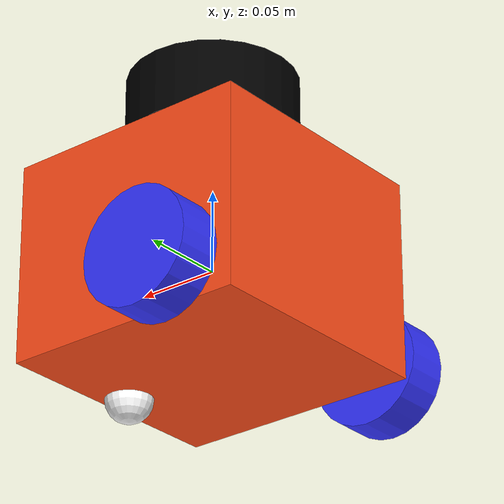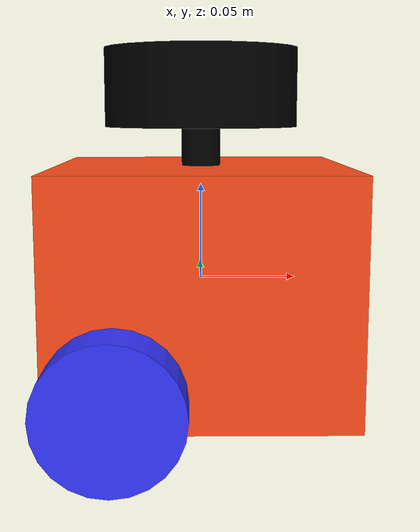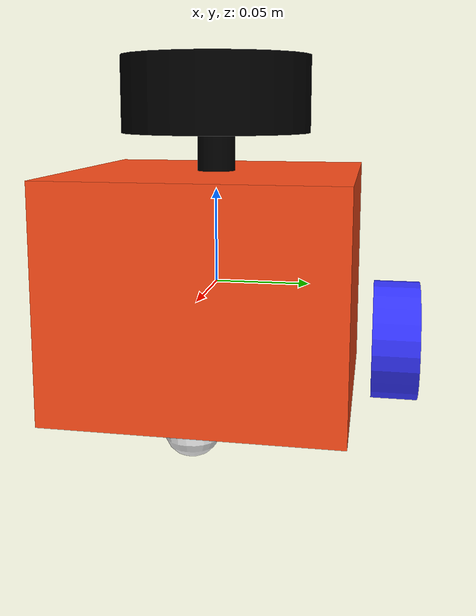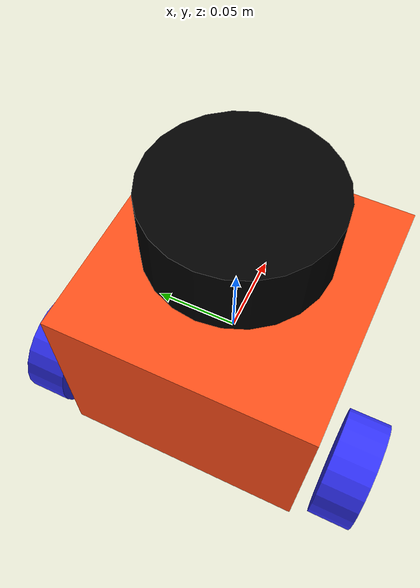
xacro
<?xml version="1.0"?>
<robot xmlns:xacro="http://www.ros.org/wiki/xacro"  name="robot">

    <xacro:include filename="robot_core.xacro" />
    <xacro:include filename="lidar.xacro" />
    <xacro:include filename="ros2_control.xacro" />
</robot>

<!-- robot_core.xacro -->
<robot xmlns:xacro="http://www.ros.org/wiki/xacro" >

    <xacro:include filename="inertial_macros.xacro"/>

    <xacro:property name="chassis_length" value="0.15"/>
    <xacro:property name="chassis_width" value="0.15"/>
    <xacro:property name="chassis_height" value="0.12"/>
    <xacro:property name="chassis_mass" value="1.0"/>

    <xacro:property name="wheel_radius" value="0.034"/>
    <xacro:property name="wheel_thickness" value="0.026"/>
    <xacro:property name="wheel_mass" value="0.05"/>

    <xacro:property name="wheel_offset_x" value="0.04"/>
    <xacro:property name="wheel_offset_y" value="0.0975"/>
    <xacro:property name="wheel_offset_z" value="0.04"/>

    <xacro:property name="caster_wheel_mass" value="0.01"/>
    <xacro:property name="caster_wheel_offset_x" value="0.06"/>

    <material name="white">
        <color rgba="1 1 1 1" />
    </material>

    <material name="orange">
        <color rgba="1 0.3 0.1 1"/>
    </material>

    <material name="blue">
        <color rgba="0.2 0.2 1 1"/>
    </material>

    <material name="black">
        <color rgba="0 0 0 1"/>
    </material>

    <material name="red">
        <color rgba="1 0 0 1"/>
    </material>

    <material name="green">
        <color rgba="0 1 0 1"/>
    </material>

    <material name="brown">
        <color rgba="0.6 0.3 0.1 1"/>
    </material>

    <!-- BASE LINK -->

    <link name="base_link">

    </link>

    <!-- BASE_FOOTPRINT LINK -->

    <joint name="base_footprint_joint" type="fixed">
        <parent link="base_link"/>
        <child link="base_footprint"/>
        <origin xyz="0 0 ${-(wheel_radius+wheel_offset_z)}" rpy="0 0 0"/>
    </joint>

    <link name="base_footprint">
    </link>

    <!-- CHASSIS LINK -->

    <joint name="chassis_joint" type="fixed">
        <parent link="base_link"/>
        <child link="chassis"/>
        <origin xyz="0 0 0"/>
    </joint>

    <link name="chassis">
        <visual>
            <origin xyz="0 0 0"/>
            <geometry>
                <box size="${chassis_length} ${chassis_width} ${chassis_height}"/>
            </geometry>
            <material name="orange"/>
        </visual>
        <collision>
            <origin xyz="0 0 0"/>
            <geometry>
                <box size="${chassis_length} ${chassis_width} ${chassis_height}"/>
            </geometry>
        </collision>
        <xacro:inertial_box mass="${chassis_mass}" x="${chassis_length}" y="${chassis_width}" z="${chassis_height}">
            <origin xyz="0 0 0" rpy="0 0 0"/>
        </xacro:inertial_box>
    </link>

    <gazebo reference="chassis">
        <material>Gazebo/Orange</material>
    </gazebo>

    <!-- LEFT WHEEL LINK -->

    <joint name="left_wheel_joint" type="continuous">
        <parent link="base_link"/>
        <child link="left_wheel"/>
        <origin xyz="${-wheel_offset_x} ${wheel_offset_y} ${-wheel_offset_z}" rpy="0 0 0" />
        <axis xyz="0 1 0"/>
    </joint>

    <link name="left_wheel">
        <visual>
            <origin xyz="0 0 0" rpy="${pi/2} 0 0" />
            <geometry>
                <cylinder radius="${wheel_radius}" length="${wheel_thickness}"/>
            </geometry>
            <material name="blue"/>
        </visual>
        <collision>
            <geometry>
                <sphere radius="${wheel_radius}"/>
            </geometry>
        </collision>
        <xacro:inertial_cylinder mass="${wheel_mass}" length="${wheel_thickness}" radius="${wheel_radius}">
            <origin xyz="0 0 0" rpy="0 0 0"/>
        </xacro:inertial_cylinder>
    </link>

    <gazebo reference="left_wheel">
        <material>Gazebo/Blue</material>
    </gazebo>

    <!-- RIGHT WHEEL LINK -->

    <joint name="right_wheel_joint" type="continuous">
        <parent link="base_link"/>
        <child link="right_wheel"/>
        <origin xyz="${-wheel_offset_x} ${-wheel_offset_y} ${-wheel_offset_z}" rpy="0 0 0" />
        <axis xyz="0 1 0"/>
    </joint>

    <link name="right_wheel">
        <visual>
            <origin xyz="0 0 0" rpy="${pi/2} 0 0" />
            <geometry>
                <cylinder radius="${wheel_radius}" length="${wheel_thickness}"/>
            </geometry>
            <material name="blue"/>
        </visual>
        <collision>
            <geometry>
                <sphere radius="${wheel_radius}"/>
            </geometry>
        </collision>
        <xacro:inertial_cylinder mass="${wheel_mass}" length="${wheel_thickness}" radius="${wheel_radius}">
            <origin xyz="0 0 0" rpy="0 0 0"/>
        </xacro:inertial_cylinder>
    </link>

    <gazebo reference="right_wheel">
        <material>Gazebo/Blue</material>
    </gazebo>

    <!-- front CASTER WHEEL LINK -->

    <joint name="front_caster_wheel_joint" type="fixed">
        <parent link="base_link"/>
        <child link="front_caster_wheel"/>
        <origin xyz="${caster_wheel_offset_x} 0.0 ${-(chassis_height/2)}" rpy="0 0 0"/>
    </joint>

    <link name="front_caster_wheel">
        <visual>
            <geometry>
                <sphere radius="${(wheel_radius+wheel_offset_z-(chassis_height/2))}"/>
            </geometry>
            <material name="white"/>
        </visual>
        <collision>
            <geometry>
                <sphere radius="${(wheel_radius+wheel_offset_z-(chassis_height/2))}"/>
            </geometry>
        </collision>
        <xacro:inertial_sphere mass="${caster_wheel_mass}" radius="${(wheel_radius+wheel_offset_z-(chassis_height/2))}">
            <origin xyz="0 0 0" rpy="0 0 0"/>
        </xacro:inertial_sphere>
    </link>

    <gazebo reference="front_caster_wheel">
        <material>Gazebo/White</material>
        <mu1 value="0.001"/>
        <mu2 value="0.001"/>
    </gazebo>

</robot>

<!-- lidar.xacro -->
<robot xmlns:xacro="http://www.ros.org/wiki/xacro" >

    <joint name="laser_joint" type="fixed">
        <parent link="chassis"/>
        <child link="laser_frame"/>
        <origin xyz="0.0 0 0.1" rpy="0 0 0"/>
    </joint>

    <link name="laser_frame">
        <visual>
            <geometry>
                <cylinder radius="0.05" length="0.04"/>
            </geometry>
            <material name="black"/>
        </visual>
        <visual>
            <origin xyz="0 0 -0.05"/>
            <geometry>
                <cylinder radius="0.01" length="0.1"/>
            </geometry>
            <material name="black"/>
        </visual>
        <collision>
            <geometry>
                <cylinder radius="0.05" length="0.04"/>
            </geometry>
        </collision>
        <xacro:inertial_cylinder mass="0.1" length="0.04" radius="0.05">
            <origin xyz="0 0 0" rpy="0 0 0"/>
        </xacro:inertial_cylinder>
    </link>

    <gazebo reference="laser_frame">
        <material>Gazebo/Black</material>

        <sensor name="laser" type="ray">
            <pose> 0 0 0 0 0 0 </pose>
            <visualize>false</visualize>
            <update_rate>50</update_rate>
            <ray>
                <scan>
                    <horizontal>
                        <samples>360</samples>
                        <min_angle>-3.14</min_angle>
                        <max_angle>3.14</max_angle>
                    </horizontal>
                </scan>
                <range>
                    <min>0.15</min>
                    <max>12</max>
                </range>
            </ray>
            <plugin name="laser_controller" filename="libgazebo_ros_ray_sensor.so">
                <ros>
                    <argument>~/out:=scan</argument>
                </ros>
                <output_type>sensor_msgs/LaserScan</output_type>
                <frame_name>laser_frame</frame_name>
            </plugin>
        </sensor>
    </gazebo>

</robot>
